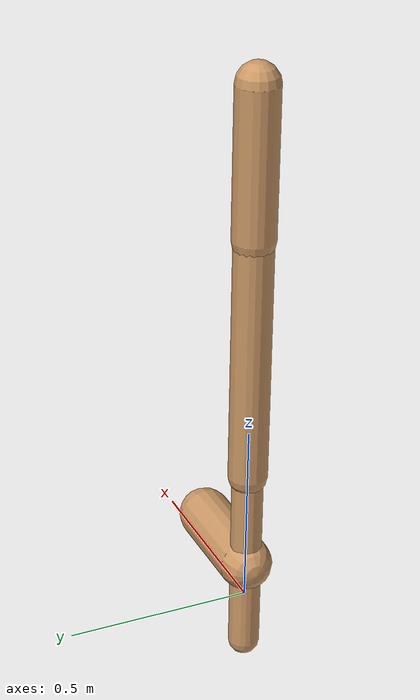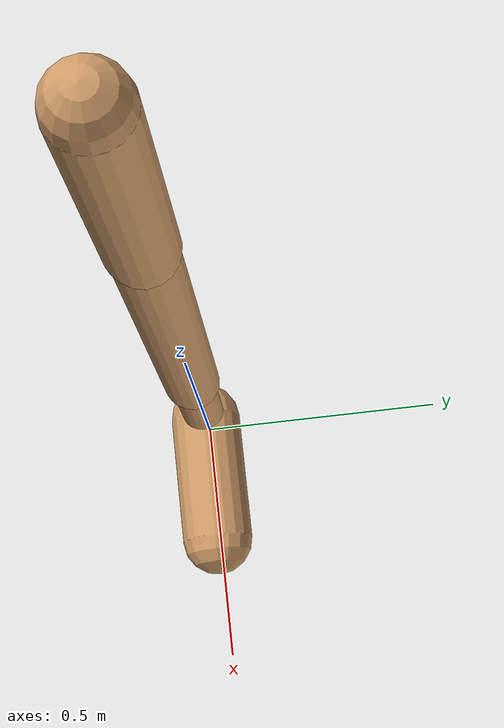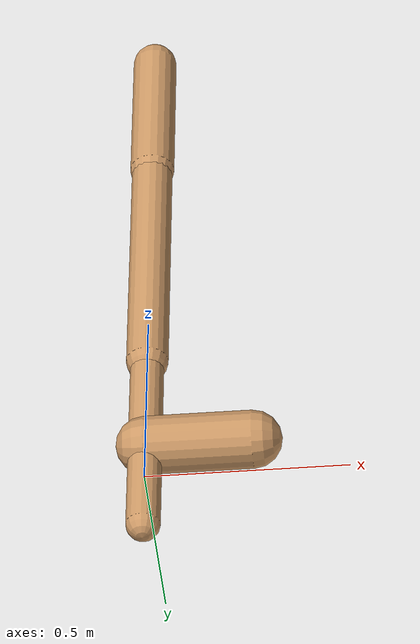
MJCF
<mujoco model="walker2d">
  <compiler angle="degree" coordinate="global" inertiafromgeom="true" />
  <default>
    <joint armature="0.01" damping=".1" limited="true" />
    <geom conaffinity="0" condim="3" contype="1" density="1000" friction="0.8 .1 .1" rgba="0.8 0.6 .4 1" />
  </default>
  <option integrator="RK4" timestep="0.002" />
  <worldbody>

    <body name="torso" pos="0 0 0.47292963710938335">
      <joint armature="0" axis="1 0 0" damping="0" limited="false" name="ignorex" pos="0 0 0" stiffness="0" type="slide" />
      <joint armature="0" axis="0 0 1" damping="0" limited="false" name="ignorez" pos="0 0 0" ref="1.25" stiffness="0" type="slide" />
      <joint armature="0" axis="0 1 0" damping="0" limited="false" name="ignorey" pos="0 0 0" stiffness="0" type="hinge" />
      <geom fromto="0 0 1.45 0 0 1.05" name="torso_geom" size="0.05749588046918987" type="capsule" />
      <body name="thigh">
        <joint axis="0 -1 0" name="thigh_joint" pos="0 0 1.05" range="-150 0" type="hinge" />
        <geom fromto="0.0 0.0 1.05 0.0 0.0 0.3759806982113447" name="thigh_geom" size="0.05297233784577518" type="capsule" />
        <body name="leg" pos="0.0 0.0 -0.22401930178865526">
          <joint axis="0 -1 0" name="leg_joint" pos="0 0 0.6" range="-150 0" type="hinge" />
          <geom fromto="0.0 0.0 0.6 0.0 0.0 -0.14891033532072806" name="leg_geom" size="0.04237787027662014" type="capsule" />
          <body name="foot" pos="0.0 0.0 -0.24891033532072807">
            <joint axis="0 -1 0" name="foot_joint" pos="0 0 0.1" range="-45 45" type="hinge" />
            <geom fromto="-0.0 0.0 0.1 0.26492742333375985 0.0 0.1" name="foot_geom" size="0.07206281396224654" type="capsule" />
          </body>
        </body>
      </body>

      <body name="thigh_left">
        <joint axis="0 -1 0" name="thigh_left_joint" pos="0 0 1.05" range="-150 0" type="hinge" />
        <geom fromto="0.0 0.0 1.05 0.0 0.0 0.3759806982113447" name="thigh_left_geom" rgba=".7 .3 .6 1" size="0.05297233784577518" type="capsule" />
        <body name="leg_left" pos="0.0 0.0 -0.22401930178865526">
          <joint axis="0 -1 0" name="leg_left_joint" pos="0 0 0.6" range="-150 0" type="hinge" />
          <geom fromto="0.0 0.0 0.6 0.0 0.0 -0.14891033532072806" name="leg_left_geom" rgba=".7 .3 .6 1" size="0.04237787027662014" type="capsule" />
          <body name="foot_left" pos="0.0 0.0 -0.24891033532072807">
            <joint axis="0 -1 0" name="foot_left_joint" pos="0 0 0.1" range="-45 45" type="hinge" />
            <geom fromto="-0.0 0.0 0.1 0.26492742333375985 0.0 0.1" name="foot_left_geom" rgba=".7 .3 .6 1" size="0.07206281396224654" type="capsule" />
          </body>
        </body>
      </body>
    </body>
  </worldbody>
  <actuator>

    <motor ctrllimited="true" ctrlrange="-1.0 1.0" gear="100" joint="thigh_joint" />
    <motor ctrllimited="true" ctrlrange="-1.0 1.0" gear="100" joint="leg_joint" />
    <motor ctrllimited="true" ctrlrange="-1.0 1.0" gear="100" joint="foot_joint" />
    <motor ctrllimited="true" ctrlrange="-1.0 1.0" gear="100" joint="thigh_left_joint" />
    <motor ctrllimited="true" ctrlrange="-1.0 1.0" gear="100" joint="leg_left_joint" />
    <motor ctrllimited="true" ctrlrange="-1.0 1.0" gear="100" joint="foot_left_joint" />

  </actuator>
</mujoco>
